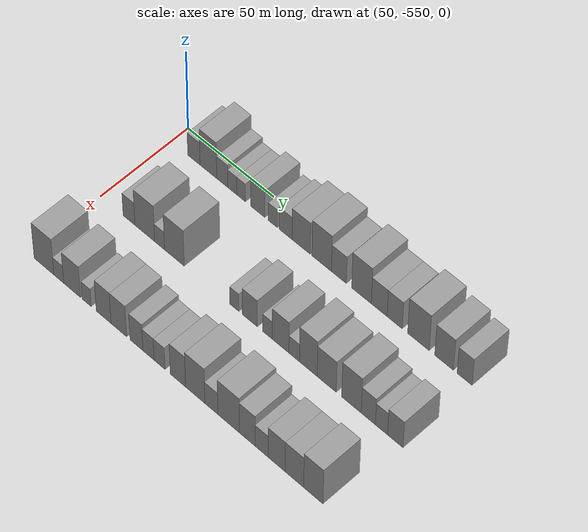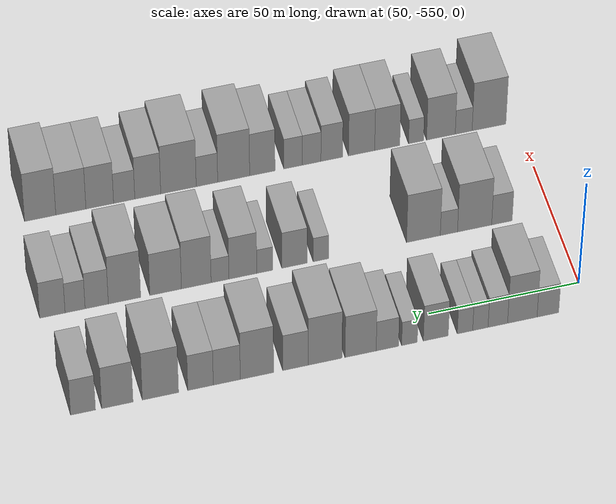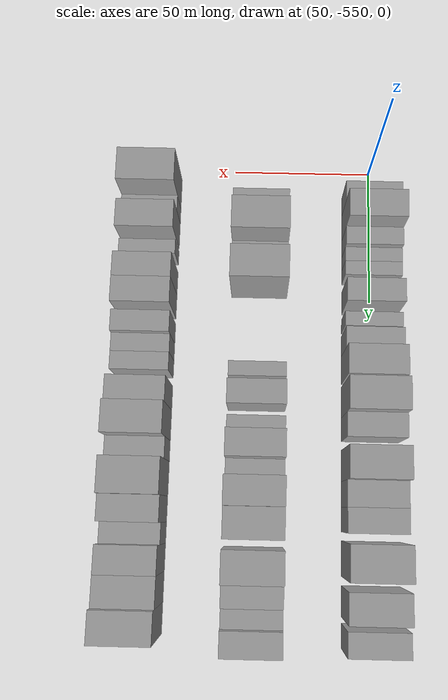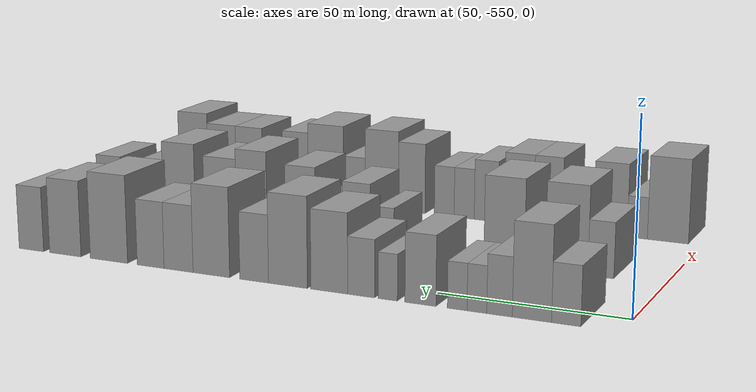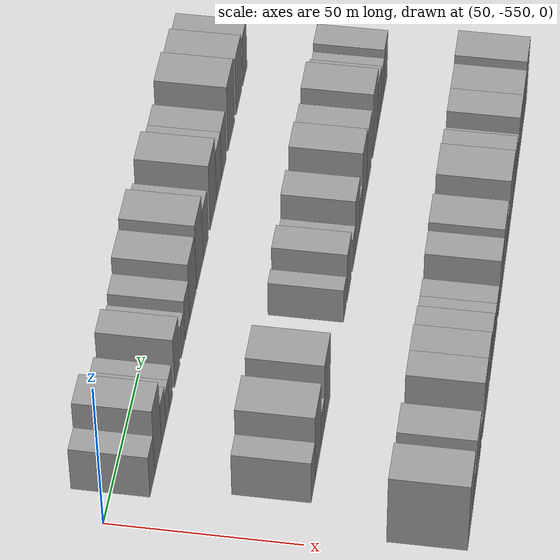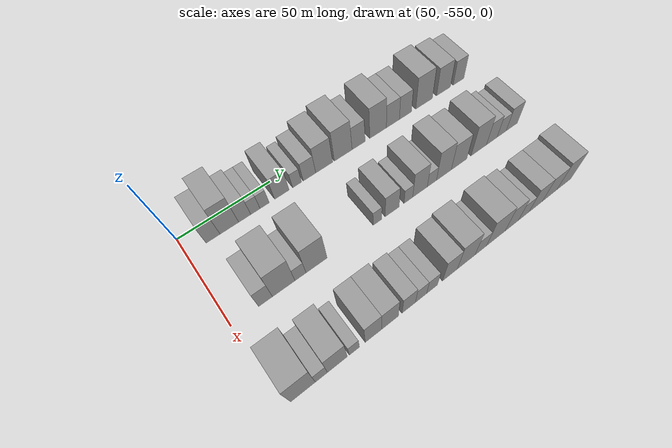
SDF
<sdf version="1.6">
 <world name="default">
  <model name="building_9">
   <static>1</static>
   <pose>50.0000 -536.5706 0 0.000000 0.000000 0.000000</pose>
   <link name="link">
    <pose>0 0 7.50 0 0 0</pose>
    <collision name="collision"><geometry><box><size>20.0000 7.2216 15.0000</size></box></geometry></collision>
    <visual name="visual">
     <cast_shadows>0</cast_shadows>
     <geometry><box><size>20.0000 7.2216 15.0000</size></box></geometry>
     <material>
      <script>
       <uri>model://grey_wall/materials/scripts</uri>
       <uri>model://grey_wall/materials/textures</uri>
       <name>vrc/grey_wall</name>
      </script>
     </material>
    </visual>
   </link>
  </model>
  <model name="building_10">
   <static>1</static>
   <pose>50.0000 -528.0604 0 0.000000 0.000000 0.000000</pose>
   <link name="link">
    <pose>0 0 12.00 0 0 0</pose>
    <collision name="collision"><geometry><box><size>20.0000 9.7987 24.0000</size></box></geometry></collision>
    <visual name="visual">
     <cast_shadows>0</cast_shadows>
     <geometry><box><size>20.0000 9.7987 24.0000</size></box></geometry>
     <material>
      <script>
       <uri>model://grey_wall/materials/scripts</uri>
       <uri>model://grey_wall/materials/textures</uri>
       <name>vrc/grey_wall</name>
      </script>
     </material>
    </visual>
   </link>
  </model>
  <model name="building_11">
   <static>1</static>
   <pose>50.0000 -519.9152 0 0.000000 0.000000 0.000000</pose>
   <link name="link">
    <pose>0 0 7.50 0 0 0</pose>
    <collision name="collision"><geometry><box><size>20.0000 6.4918 15.0000</size></box></geometry></collision>
    <visual name="visual">
     <cast_shadows>0</cast_shadows>
     <geometry><box><size>20.0000 6.4918 15.0000</size></box></geometry>
     <material>
      <script>
       <uri>model://grey_wall/materials/scripts</uri>
       <uri>model://grey_wall/materials/textures</uri>
       <name>vrc/grey_wall</name>
      </script>
     </material>
    </visual>
   </link>
  </model>
  <model name="building_12">
   <static>1</static>
   <pose>50.0000 -514.1275 0 0.000000 0.000000 0.000000</pose>
   <link name="link">
    <pose>0 0 6.00 0 0 0</pose>
    <collision name="collision"><geometry><box><size>20.0000 5.0837 12.0000</size></box></geometry></collision>
    <visual name="visual">
     <cast_shadows>0</cast_shadows>
     <geometry><box><size>20.0000 5.0837 12.0000</size></box></geometry>
     <material>
      <script>
       <uri>model://grey_wall/materials/scripts</uri>
       <uri>model://grey_wall/materials/textures</uri>
       <name>vrc/grey_wall</name>
      </script>
     </material>
    </visual>
   </link>
  </model>
  <model name="building_13">
   <static>1</static>
   <pose>50.0000 -509.0317 0 0.000000 0.000000 0.000000</pose>
   <link name="link">
    <pose>0 0 6.00 0 0 0</pose>
    <collision name="collision"><geometry><box><size>20.0000 5.1077 12.0000</size></box></geometry></collision>
    <visual name="visual">
     <cast_shadows>0</cast_shadows>
     <geometry><box><size>20.0000 5.1077 12.0000</size></box></geometry>
     <material>
      <script>
       <uri>model://grey_wall/materials/scripts</uri>
       <uri>model://grey_wall/materials/textures</uri>
       <name>vrc/grey_wall</name>
      </script>
     </material>
    </visual>
   </link>
  </model>
  <model name="building_14">
   <static>1</static>
   <pose>50.0000 -499.3584 0 0.000000 0.000000 0.000000</pose>
   <link name="link">
    <pose>0 0 9.00 0 0 0</pose>
    <collision name="collision"><geometry><box><size>20.0000 8.2390 18.0000</size></box></geometry></collision>
    <visual name="visual">
     <cast_shadows>0</cast_shadows>
     <geometry><box><size>20.0000 8.2390 18.0000</size></box></geometry>
     <material>
      <script>
       <uri>model://grey_wall/materials/scripts</uri>
       <uri>model://grey_wall/materials/textures</uri>
       <name>vrc/grey_wall</name>
      </script>
     </material>
    </visual>
   </link>
  </model>
  <model name="building_15">
   <static>1</static>
   <pose>50.0000 -490.6600 0 0.000000 0.000000 0.000000</pose>
   <link name="link">
    <pose>0 0 6.00 0 0 0</pose>
    <collision name="collision"><geometry><box><size>20.0000 5.1577 12.0000</size></box></geometry></collision>
    <visual name="visual">
     <cast_shadows>0</cast_shadows>
     <geometry><box><size>20.0000 5.1577 12.0000</size></box></geometry>
     <material>
      <script>
       <uri>model://grey_wall/materials/scripts</uri>
       <uri>model://grey_wall/materials/textures</uri>
       <name>vrc/grey_wall</name>
      </script>
     </material>
    </visual>
   </link>
  </model>
  <model name="building_16">
   <static>1</static>
   <pose>50.0000 -483.3832 0 0.000000 0.000000 0.000000</pose>
   <link name="link">
    <pose>0 0 7.50 0 0 0</pose>
    <collision name="collision"><geometry><box><size>20.0000 7.3959 15.0000</size></box></geometry></collision>
    <visual name="visual">
     <cast_shadows>0</cast_shadows>
     <geometry><box><size>20.0000 7.3959 15.0000</size></box></geometry>
     <material>
      <script>
       <uri>model://grey_wall/materials/scripts</uri>
       <uri>model://grey_wall/materials/textures</uri>
       <name>vrc/grey_wall</name>
      </script>
     </material>
    </visual>
   </link>
  </model>
  <model name="building_17">
   <static>1</static>
   <pose>50.0000 -474.5680 0 0.000000 0.000000 0.000000</pose>
   <link name="link">
    <pose>0 0 10.50 0 0 0</pose>
    <collision name="collision"><geometry><box><size>20.0000 10.2346 21.0000</size></box></geometry></collision>
    <visual name="visual">
     <cast_shadows>0</cast_shadows>
     <geometry><box><size>20.0000 10.2346 21.0000</size></box></geometry>
     <material>
      <script>
       <uri>model://grey_wall/materials/scripts</uri>
       <uri>model://grey_wall/materials/textures</uri>
       <name>vrc/grey_wall</name>
      </script>
     </material>
    </visual>
   </link>
  </model>
  <model name="building_18">
   <static>1</static>
   <pose>50.0000 -462.9156 0 0.000000 0.000000 0.000000</pose>
   <link name="link">
    <pose>0 0 12.00 0 0 0</pose>
    <collision name="collision"><geometry><box><size>20.0000 11.0701 24.0000</size></box></geometry></collision>
    <visual name="visual">
     <cast_shadows>0</cast_shadows>
     <geometry><box><size>20.0000 11.0701 24.0000</size></box></geometry>
     <material>
      <script>
       <uri>model://grey_wall/materials/scripts</uri>
       <uri>model://grey_wall/materials/textures</uri>
       <name>vrc/grey_wall</name>
      </script>
     </material>
    </visual>
   </link>
  </model>
  <model name="building_19">
   <static>1</static>
   <pose>50.0000 -453.2186 0 0.000000 0.000000 0.000000</pose>
   <link name="link">
    <pose>0 0 9.00 0 0 0</pose>
    <collision name="collision"><geometry><box><size>20.0000 8.3239 18.0000</size></box></geometry></collision>
    <visual name="visual">
     <cast_shadows>0</cast_shadows>
     <geometry><box><size>20.0000 8.3239 18.0000</size></box></geometry>
     <material>
      <script>
       <uri>model://grey_wall/materials/scripts</uri>
       <uri>model://grey_wall/materials/textures</uri>
       <name>vrc/grey_wall</name>
      </script>
     </material>
    </visual>
   </link>
  </model>
  <model name="building_20">
   <static>1</static>
   <pose>50.0000 -440.6181 0 0.000000 0.000000 0.000000</pose>
   <link name="link">
    <pose>0 0 12.00 0 0 0</pose>
    <collision name="collision"><geometry><box><size>20.0000 10.8770 24.0000</size></box></geometry></collision>
    <visual name="visual">
     <cast_shadows>0</cast_shadows>
     <geometry><box><size>20.0000 10.8770 24.0000</size></box></geometry>
     <material>
      <script>
       <uri>model://grey_wall/materials/scripts</uri>
       <uri>model://grey_wall/materials/textures</uri>
       <name>vrc/grey_wall</name>
      </script>
     </material>
    </visual>
   </link>
  </model>
  <model name="building_21">
   <static>1</static>
   <pose>50.0000 -430.7888 0 0.000000 0.000000 0.000000</pose>
   <link name="link">
    <pose>0 0 9.00 0 0 0</pose>
    <collision name="collision"><geometry><box><size>20.0000 8.7816 18.0000</size></box></geometry></collision>
    <visual name="visual">
     <cast_shadows>0</cast_shadows>
     <geometry><box><size>20.0000 8.7816 18.0000</size></box></geometry>
     <material>
      <script>
       <uri>model://grey_wall/materials/scripts</uri>
       <uri>model://grey_wall/materials/textures</uri>
       <name>vrc/grey_wall</name>
      </script>
     </material>
    </visual>
   </link>
  </model>
  <model name="building_22">
   <static>1</static>
   <pose>50.0000 -422.2587 0 0.000000 0.000000 0.000000</pose>
   <link name="link">
    <pose>0 0 9.00 0 0 0</pose>
    <collision name="collision"><geometry><box><size>20.0000 8.2787 18.0000</size></box></geometry></collision>
    <visual name="visual">
     <cast_shadows>0</cast_shadows>
     <geometry><box><size>20.0000 8.2787 18.0000</size></box></geometry>
     <material>
      <script>
       <uri>model://grey_wall/materials/scripts</uri>
       <uri>model://grey_wall/materials/textures</uri>
       <name>vrc/grey_wall</name>
      </script>
     </material>
    </visual>
   </link>
  </model>
  <model name="building_23">
   <static>1</static>
   <pose>50.0000 -409.2521 0 0.000000 0.000000 0.000000</pose>
   <link name="link">
    <pose>0 0 12.00 0 0 0</pose>
    <collision name="collision"><geometry><box><size>20.0000 11.7345 24.0000</size></box></geometry></collision>
    <visual name="visual">
     <cast_shadows>0</cast_shadows>
     <geometry><box><size>20.0000 11.7345 24.0000</size></box></geometry>
     <material>
      <script>
       <uri>model://grey_wall/materials/scripts</uri>
       <uri>model://grey_wall/materials/textures</uri>
       <name>vrc/grey_wall</name>
      </script>
     </material>
    </visual>
   </link>
  </model>
  <model name="building_24">
   <static>1</static>
   <pose>50.0000 -395.3235 0 0.000000 0.000000 0.000000</pose>
   <link name="link">
    <pose>0 0 10.50 0 0 0</pose>
    <collision name="collision"><geometry><box><size>20.0000 10.1227 21.0000</size></box></geometry></collision>
    <visual name="visual">
     <cast_shadows>0</cast_shadows>
     <geometry><box><size>20.0000 10.1227 21.0000</size></box></geometry>
     <material>
      <script>
       <uri>model://grey_wall/materials/scripts</uri>
       <uri>model://grey_wall/materials/textures</uri>
       <name>vrc/grey_wall</name>
      </script>
     </material>
    </visual>
   </link>
  </model>
  <model name="building_25">
   <static>1</static>
   <pose>50.0000 -384.2467 0 0.000000 0.000000 0.000000</pose>
   <link name="link">
    <pose>0 0 9.00 0 0 0</pose>
    <collision name="collision"><geometry><box><size>20.0000 8.0308 18.0000</size></box></geometry></collision>
    <visual name="visual">
     <cast_shadows>0</cast_shadows>
     <geometry><box><size>20.0000 8.0308 18.0000</size></box></geometry>
     <material>
      <script>
       <uri>model://grey_wall/materials/scripts</uri>
       <uri>model://grey_wall/materials/textures</uri>
       <name>vrc/grey_wall</name>
      </script>
     </material>
    </visual>
   </link>
  </model>
  <model name="building_141">
   <static>1</static>
   <pose>90.0000 -533.0863 0 0.000000 0.000000 0.000000</pose>
   <link name="link">
    <pose>0 0 7.50 0 0 0</pose>
    <collision name="collision"><geometry><box><size>20.0000 6.9325 15.0000</size></box></geometry></collision>
    <visual name="visual">
     <cast_shadows>0</cast_shadows>
     <geometry><box><size>20.0000 6.9325 15.0000</size></box></geometry>
     <material>
      <script>
       <uri>model://grey_wall/materials/scripts</uri>
       <uri>model://grey_wall/materials/textures</uri>
       <name>vrc/grey_wall</name>
      </script>
     </material>
    </visual>
   </link>
  </model>
  <model name="building_142">
   <static>1</static>
   <pose>90.0000 -523.8484 0 0.000000 0.000000 0.000000</pose>
   <link name="link">
    <pose>0 0 12.00 0 0 0</pose>
    <collision name="collision"><geometry><box><size>20.0000 11.5434 24.0000</size></box></geometry></collision>
    <visual name="visual">
     <cast_shadows>0</cast_shadows>
     <geometry><box><size>20.0000 11.5434 24.0000</size></box></geometry>
     <material>
      <script>
       <uri>model://grey_wall/materials/scripts</uri>
       <uri>model://grey_wall/materials/textures</uri>
       <name>vrc/grey_wall</name>
      </script>
     </material>
    </visual>
   </link>
  </model>
  <model name="building_143">
   <static>1</static>
   <pose>90.0000 -515.1799 0 0.000000 0.000000 0.000000</pose>
   <link name="link">
    <pose>0 0 6.00 0 0 0</pose>
    <collision name="collision"><geometry><box><size>20.0000 5.7935 12.0000</size></box></geometry></collision>
    <visual name="visual">
     <cast_shadows>0</cast_shadows>
     <geometry><box><size>20.0000 5.7935 12.0000</size></box></geometry>
     <material>
      <script>
       <uri>model://grey_wall/materials/scripts</uri>
       <uri>model://grey_wall/materials/textures</uri>
       <name>vrc/grey_wall</name>
      </script>
     </material>
    </visual>
   </link>
  </model>
  <model name="building_144">
   <static>1</static>
   <pose>90.0000 -506.5988 0 0.000000 0.000000 0.000000</pose>
   <link name="link">
    <pose>0 0 12.00 0 0 0</pose>
    <collision name="collision"><geometry><box><size>20.0000 11.3687 24.0000</size></box></geometry></collision>
    <visual name="visual">
     <cast_shadows>0</cast_shadows>
     <geometry><box><size>20.0000 11.3687 24.0000</size></box></geometry>
     <material>
      <script>
       <uri>model://grey_wall/materials/scripts</uri>
       <uri>model://grey_wall/materials/textures</uri>
       <name>vrc/grey_wall</name>
      </script>
     </material>
    </visual>
   </link>
  </model>
  <model name="building_145">
   <static>1</static>
   <pose>90.0000 -472.2191 0 0.000000 0.000000 0.000000</pose>
   <link name="link">
    <pose>0 0 6.00 0 0 0</pose>
    <collision name="collision"><geometry><box><size>20.0000 5.1303 12.0000</size></box></geometry></collision>
    <visual name="visual">
     <cast_shadows>0</cast_shadows>
     <geometry><box><size>20.0000 5.1303 12.0000</size></box></geometry>
     <material>
      <script>
       <uri>model://grey_wall/materials/scripts</uri>
       <uri>model://grey_wall/materials/textures</uri>
       <name>vrc/grey_wall</name>
      </script>
     </material>
    </visual>
   </link>
  </model>
  <model name="building_146">
   <static>1</static>
   <pose>90.0000 -463.4423 0 0.000000 0.000000 0.000000</pose>
   <link name="link">
    <pose>0 0 9.00 0 0 0</pose>
    <collision name="collision"><geometry><box><size>20.0000 8.4232 18.0000</size></box></geometry></collision>
    <visual name="visual">
     <cast_shadows>0</cast_shadows>
     <geometry><box><size>20.0000 8.4232 18.0000</size></box></geometry>
     <material>
      <script>
       <uri>model://grey_wall/materials/scripts</uri>
       <uri>model://grey_wall/materials/textures</uri>
       <name>vrc/grey_wall</name>
      </script>
     </material>
    </visual>
   </link>
  </model>
  <model name="building_147">
   <static>1</static>
   <pose>90.0000 -453.5476 0 0.000000 0.000000 0.000000</pose>
   <link name="link">
    <pose>0 0 6.00 0 0 0</pose>
    <collision name="collision"><geometry><box><size>20.0000 5.3661 12.0000</size></box></geometry></collision>
    <visual name="visual">
     <cast_shadows>0</cast_shadows>
     <geometry><box><size>20.0000 5.3661 12.0000</size></box></geometry>
     <material>
      <script>
       <uri>model://grey_wall/materials/scripts</uri>
       <uri>model://grey_wall/materials/textures</uri>
       <name>vrc/grey_wall</name>
      </script>
     </material>
    </visual>
   </link>
  </model>
  <model name="building_148">
   <static>1</static>
   <pose>90.0000 -446.2421 0 0.000000 0.000000 0.000000</pose>
   <link name="link">
    <pose>0 0 10.50 0 0 0</pose>
    <collision name="collision"><geometry><box><size>20.0000 9.2450 21.0000</size></box></geometry></collision>
    <visual name="visual">
     <cast_shadows>0</cast_shadows>
     <geometry><box><size>20.0000 9.2450 21.0000</size></box></geometry>
     <material>
      <script>
       <uri>model://grey_wall/materials/scripts</uri>
       <uri>model://grey_wall/materials/textures</uri>
       <name>vrc/grey_wall</name>
      </script>
     </material>
    </visual>
   </link>
  </model>
  <model name="building_149">
   <static>1</static>
   <pose>90.0000 -438.6717 0 0.000000 0.000000 0.000000</pose>
   <link name="link">
    <pose>0 0 6.00 0 0 0</pose>
    <collision name="collision"><geometry><box><size>20.0000 5.8957 12.0000</size></box></geometry></collision>
    <visual name="visual">
     <cast_shadows>0</cast_shadows>
     <geometry><box><size>20.0000 5.8957 12.0000</size></box></geometry>
     <material>
      <script>
       <uri>model://grey_wall/materials/scripts</uri>
       <uri>model://grey_wall/materials/textures</uri>
       <name>vrc/grey_wall</name>
      </script>
     </material>
    </visual>
   </link>
  </model>
  <model name="building_150">
   <static>1</static>
   <pose>90.0000 -430.8221 0 0.000000 0.000000 0.000000</pose>
   <link name="link">
    <pose>0 0 12.00 0 0 0</pose>
    <collision name="collision"><geometry><box><size>20.0000 9.8035 24.0000</size></box></geometry></collision>
    <visual name="visual">
     <cast_shadows>0</cast_shadows>
     <geometry><box><size>20.0000 9.8035 24.0000</size></box></geometry>
     <material>
      <script>
       <uri>model://grey_wall/materials/scripts</uri>
       <uri>model://grey_wall/materials/textures</uri>
       <name>vrc/grey_wall</name>
      </script>
     </material>
    </visual>
   </link>
  </model>
  <model name="building_151">
   <static>1</static>
   <pose>90.0000 -420.6980 0 0.000000 0.000000 0.000000</pose>
   <link name="link">
    <pose>0 0 10.50 0 0 0</pose>
    <collision name="collision"><geometry><box><size>20.0000 10.4447 21.0000</size></box></geometry></collision>
    <visual name="visual">
     <cast_shadows>0</cast_shadows>
     <geometry><box><size>20.0000 10.4447 21.0000</size></box></geometry>
     <material>
      <script>
       <uri>model://grey_wall/materials/scripts</uri>
       <uri>model://grey_wall/materials/textures</uri>
       <name>vrc/grey_wall</name>
      </script>
     </material>
    </visual>
   </link>
  </model>
  <model name="building_152">
   <static>1</static>
   <pose>90.0000 -407.1530 0 0.000000 0.000000 0.000000</pose>
   <link name="link">
    <pose>0 0 12.00 0 0 0</pose>
    <collision name="collision"><geometry><box><size>20.0000 10.6453 24.0000</size></box></geometry></collision>
    <visual name="visual">
     <cast_shadows>0</cast_shadows>
     <geometry><box><size>20.0000 10.6453 24.0000</size></box></geometry>
     <material>
      <script>
       <uri>model://grey_wall/materials/scripts</uri>
       <uri>model://grey_wall/materials/textures</uri>
       <name>vrc/grey_wall</name>
      </script>
     </material>
    </visual>
   </link>
  </model>
  <model name="building_153">
   <static>1</static>
   <pose>90.0000 -398.0143 0 0.000000 0.000000 0.000000</pose>
   <link name="link">
    <pose>0 0 9.00 0 0 0</pose>
    <collision name="collision"><geometry><box><size>20.0000 7.6323 18.0000</size></box></geometry></collision>
    <visual name="visual">
     <cast_shadows>0</cast_shadows>
     <geometry><box><size>20.0000 7.6323 18.0000</size></box></geometry>
     <material>
      <script>
       <uri>model://grey_wall/materials/scripts</uri>
       <uri>model://grey_wall/materials/textures</uri>
       <name>vrc/grey_wall</name>
      </script>
     </material>
    </visual>
   </link>
  </model>
  <model name="building_154">
   <static>1</static>
   <pose>90.0000 -390.9142 0 0.000000 0.000000 0.000000</pose>
   <link name="link">
    <pose>0 0 7.50 0 0 0</pose>
    <collision name="collision"><geometry><box><size>20.0000 6.5679 15.0000</size></box></geometry></collision>
    <visual name="visual">
     <cast_shadows>0</cast_shadows>
     <geometry><box><size>20.0000 6.5679 15.0000</size></box></geometry>
     <material>
      <script>
       <uri>model://grey_wall/materials/scripts</uri>
       <uri>model://grey_wall/materials/textures</uri>
       <name>vrc/grey_wall</name>
      </script>
     </material>
    </visual>
   </link>
  </model>
  <model name="building_155">
   <static>1</static>
   <pose>90.0000 -383.4702 0 0.000000 0.000000 0.000000</pose>
   <link name="link">
    <pose>0 0 9.00 0 0 0</pose>
    <collision name="collision"><geometry><box><size>20.0000 8.3200 18.0000</size></box></geometry></collision>
    <visual name="visual">
     <cast_shadows>0</cast_shadows>
     <geometry><box><size>20.0000 8.3200 18.0000</size></box></geometry>
     <material>
      <script>
       <uri>model://grey_wall/materials/scripts</uri>
       <uri>model://grey_wall/materials/textures</uri>
       <name>vrc/grey_wall</name>
      </script>
     </material>
    </visual>
   </link>
  </model>
  <model name="building_278">
   <static>1</static>
   <pose>130.0000 -540.4434 0 0.000000 0.000000 0.000000</pose>
   <link name="link">
    <pose>0 0 12.00 0 0 0</pose>
    <collision name="collision"><geometry><box><size>20.0000 11.6261 24.0000</size></box></geometry></collision>
    <visual name="visual">
     <cast_shadows>0</cast_shadows>
     <geometry><box><size>20.0000 11.6261 24.0000</size></box></geometry>
     <material>
      <script>
       <uri>model://grey_wall/materials/scripts</uri>
       <uri>model://grey_wall/materials/textures</uri>
       <name>vrc/grey_wall</name>
      </script>
     </material>
    </visual>
   </link>
  </model>
  <model name="building_279">
   <static>1</static>
   <pose>130.0000 -531.7332 0 0.000000 0.000000 0.000000</pose>
   <link name="link">
    <pose>0 0 6.00 0 0 0</pose>
    <collision name="collision"><geometry><box><size>20.0000 5.7943 12.0000</size></box></geometry></collision>
    <visual name="visual">
     <cast_shadows>0</cast_shadows>
     <geometry><box><size>20.0000 5.7943 12.0000</size></box></geometry>
     <material>
      <script>
       <uri>model://grey_wall/materials/scripts</uri>
       <uri>model://grey_wall/materials/textures</uri>
       <name>vrc/grey_wall</name>
      </script>
     </material>
    </visual>
   </link>
  </model>
  <model name="building_280">
   <static>1</static>
   <pose>130.0000 -523.9139 0 0.000000 0.000000 0.000000</pose>
   <link name="link">
    <pose>0 0 10.50 0 0 0</pose>
    <collision name="collision"><geometry><box><size>20.0000 9.8442 21.0000</size></box></geometry></collision>
    <visual name="visual">
     <cast_shadows>0</cast_shadows>
     <geometry><box><size>20.0000 9.8442 21.0000</size></box></geometry>
     <material>
      <script>
       <uri>model://grey_wall/materials/scripts</uri>
       <uri>model://grey_wall/materials/textures</uri>
       <name>vrc/grey_wall</name>
      </script>
     </material>
    </visual>
   </link>
  </model>
  <model name="building_281">
   <static>1</static>
   <pose>130.0000 -515.4103 0 0.000000 0.000000 0.000000</pose>
   <link name="link">
    <pose>0 0 6.00 0 0 0</pose>
    <collision name="collision"><geometry><box><size>20.0000 5.1631 12.0000</size></box></geometry></collision>
    <visual name="visual">
     <cast_shadows>0</cast_shadows>
     <geometry><box><size>20.0000 5.1631 12.0000</size></box></geometry>
     <material>
      <script>
       <uri>model://grey_wall/materials/scripts</uri>
       <uri>model://grey_wall/materials/textures</uri>
       <name>vrc/grey_wall</name>
      </script>
     </material>
    </visual>
   </link>
  </model>
  <model name="building_282">
   <static>1</static>
   <pose>130.0000 -505.5357 0 0.000000 0.000000 0.000000</pose>
   <link name="link">
    <pose>0 0 10.50 0 0 0</pose>
    <collision name="collision"><geometry><box><size>20.0000 8.5862 21.0000</size></box></geometry></collision>
    <visual name="visual">
     <cast_shadows>0</cast_shadows>
     <geometry><box><size>20.0000 8.5862 21.0000</size></box></geometry>
     <material>
      <script>
       <uri>model://grey_wall/materials/scripts</uri>
       <uri>model://grey_wall/materials/textures</uri>
       <name>vrc/grey_wall</name>
      </script>
     </material>
    </visual>
   </link>
  </model>
  <model name="building_283">
   <static>1</static>
   <pose>130.0000 -496.7783 0 0.000000 0.000000 0.000000</pose>
   <link name="link">
    <pose>0 0 10.50 0 0 0</pose>
    <collision name="collision"><geometry><box><size>20.0000 8.9286 21.0000</size></box></geometry></collision>
    <visual name="visual">
     <cast_shadows>0</cast_shadows>
     <geometry><box><size>20.0000 8.9286 21.0000</size></box></geometry>
     <material>
      <script>
       <uri>model://grey_wall/materials/scripts</uri>
       <uri>model://grey_wall/materials/textures</uri>
       <name>vrc/grey_wall</name>
      </script>
     </material>
    </visual>
   </link>
  </model>
  <model name="building_284">
   <static>1</static>
   <pose>130.0000 -486.6291 0 0.000000 0.000000 0.000000</pose>
   <link name="link">
    <pose>0 0 9.00 0 0 0</pose>
    <collision name="collision"><geometry><box><size>20.0000 7.3698 18.0000</size></box></geometry></collision>
    <visual name="visual">
     <cast_shadows>0</cast_shadows>
     <geometry><box><size>20.0000 7.3698 18.0000</size></box></geometry>
     <material>
      <script>
       <uri>model://grey_wall/materials/scripts</uri>
       <uri>model://grey_wall/materials/textures</uri>
       <name>vrc/grey_wall</name>
      </script>
     </material>
    </visual>
   </link>
  </model>
  <model name="building_285">
   <static>1</static>
   <pose>130.0000 -479.7828 0 0.000000 0.000000 0.000000</pose>
   <link name="link">
    <pose>0 0 7.50 0 0 0</pose>
    <collision name="collision"><geometry><box><size>20.0000 6.3229 15.0000</size></box></geometry></collision>
    <visual name="visual">
     <cast_shadows>0</cast_shadows>
     <geometry><box><size>20.0000 6.3229 15.0000</size></box></geometry>
     <material>
      <script>
       <uri>model://grey_wall/materials/scripts</uri>
       <uri>model://grey_wall/materials/textures</uri>
       <name>vrc/grey_wall</name>
      </script>
     </material>
    </visual>
   </link>
  </model>
  <model name="building_286">
   <static>1</static>
   <pose>130.0000 -473.4945 0 0.000000 0.000000 0.000000</pose>
   <link name="link">
    <pose>0 0 7.50 0 0 0</pose>
    <collision name="collision"><geometry><box><size>20.0000 6.2537 15.0000</size></box></geometry></collision>
    <visual name="visual">
     <cast_shadows>0</cast_shadows>
     <geometry><box><size>20.0000 6.2537 15.0000</size></box></geometry>
     <material>
      <script>
       <uri>model://grey_wall/materials/scripts</uri>
       <uri>model://grey_wall/materials/textures</uri>
       <name>vrc/grey_wall</name>
      </script>
     </material>
    </visual>
   </link>
  </model>
  <model name="building_287">
   <static>1</static>
   <pose>130.0000 -463.0679 0 0.000000 0.000000 0.000000</pose>
   <link name="link">
    <pose>0 0 10.50 0 0 0</pose>
    <collision name="collision"><geometry><box><size>20.0000 8.5994 21.0000</size></box></geometry></collision>
    <visual name="visual">
     <cast_shadows>0</cast_shadows>
     <geometry><box><size>20.0000 8.5994 21.0000</size></box></geometry>
     <material>
      <script>
       <uri>model://grey_wall/materials/scripts</uri>
       <uri>model://grey_wall/materials/textures</uri>
       <name>vrc/grey_wall</name>
      </script>
     </material>
    </visual>
   </link>
  </model>
  <model name="building_288">
   <static>1</static>
   <pose>130.0000 -453.3747 0 0.000000 0.000000 0.000000</pose>
   <link name="link">
    <pose>0 0 12.00 0 0 0</pose>
    <collision name="collision"><geometry><box><size>20.0000 10.7871 24.0000</size></box></geometry></collision>
    <visual name="visual">
     <cast_shadows>0</cast_shadows>
     <geometry><box><size>20.0000 10.7871 24.0000</size></box></geometry>
     <material>
      <script>
       <uri>model://grey_wall/materials/scripts</uri>
       <uri>model://grey_wall/materials/textures</uri>
       <name>vrc/grey_wall</name>
      </script>
     </material>
    </visual>
   </link>
  </model>
  <model name="building_289">
   <static>1</static>
   <pose>130.0000 -444.3567 0 0.000000 0.000000 0.000000</pose>
   <link name="link">
    <pose>0 0 7.50 0 0 0</pose>
    <collision name="collision"><geometry><box><size>20.0000 7.2487 15.0000</size></box></geometry></collision>
    <visual name="visual">
     <cast_shadows>0</cast_shadows>
     <geometry><box><size>20.0000 7.2487 15.0000</size></box></geometry>
     <material>
      <script>
       <uri>model://grey_wall/materials/scripts</uri>
       <uri>model://grey_wall/materials/textures</uri>
       <name>vrc/grey_wall</name>
      </script>
     </material>
    </visual>
   </link>
  </model>
  <model name="building_290">
   <static>1</static>
   <pose>130.0000 -434.7741 0 0.000000 0.000000 0.000000</pose>
   <link name="link">
    <pose>0 0 12.00 0 0 0</pose>
    <collision name="collision"><geometry><box><size>20.0000 11.9165 24.0000</size></box></geometry></collision>
    <visual name="visual">
     <cast_shadows>0</cast_shadows>
     <geometry><box><size>20.0000 11.9165 24.0000</size></box></geometry>
     <material>
      <script>
       <uri>model://grey_wall/materials/scripts</uri>
       <uri>model://grey_wall/materials/textures</uri>
       <name>vrc/grey_wall</name>
      </script>
     </material>
    </visual>
   </link>
  </model>
  <model name="building_291">
   <static>1</static>
   <pose>130.0000 -424.4605 0 0.000000 0.000000 0.000000</pose>
   <link name="link">
    <pose>0 0 10.50 0 0 0</pose>
    <collision name="collision"><geometry><box><size>20.0000 8.7107 21.0000</size></box></geometry></collision>
    <visual name="visual">
     <cast_shadows>0</cast_shadows>
     <geometry><box><size>20.0000 8.7107 21.0000</size></box></geometry>
     <material>
      <script>
       <uri>model://grey_wall/materials/scripts</uri>
       <uri>model://grey_wall/materials/textures</uri>
       <name>vrc/grey_wall</name>
      </script>
     </material>
    </visual>
   </link>
  </model>
  <model name="building_292">
   <static>1</static>
   <pose>130.0000 -416.5527 0 0.000000 0.000000 0.000000</pose>
   <link name="link">
    <pose>0 0 7.50 0 0 0</pose>
    <collision name="collision"><geometry><box><size>20.0000 7.1049 15.0000</size></box></geometry></collision>
    <visual name="visual">
     <cast_shadows>0</cast_shadows>
     <geometry><box><size>20.0000 7.1049 15.0000</size></box></geometry>
     <material>
      <script>
       <uri>model://grey_wall/materials/scripts</uri>
       <uri>model://grey_wall/materials/textures</uri>
       <name>vrc/grey_wall</name>
      </script>
     </material>
    </visual>
   </link>
  </model>
  <model name="building_293">
   <static>1</static>
   <pose>130.0000 -408.3748 0 0.000000 0.000000 0.000000</pose>
   <link name="link">
    <pose>0 0 10.50 0 0 0</pose>
    <collision name="collision"><geometry><box><size>20.0000 9.2510 21.0000</size></box></geometry></collision>
    <visual name="visual">
     <cast_shadows>0</cast_shadows>
     <geometry><box><size>20.0000 9.2510 21.0000</size></box></geometry>
     <material>
      <script>
       <uri>model://grey_wall/materials/scripts</uri>
       <uri>model://grey_wall/materials/textures</uri>
       <name>vrc/grey_wall</name>
      </script>
     </material>
    </visual>
   </link>
  </model>
  <model name="building_294">
   <static>1</static>
   <pose>130.0000 -398.7276 0 0.000000 0.000000 0.000000</pose>
   <link name="link">
    <pose>0 0 10.50 0 0 0</pose>
    <collision name="collision"><geometry><box><size>20.0000 10.0433 21.0000</size></box></geometry></collision>
    <visual name="visual">
     <cast_shadows>0</cast_shadows>
     <geometry><box><size>20.0000 10.0433 21.0000</size></box></geometry>
     <material>
      <script>
       <uri>model://grey_wall/materials/scripts</uri>
       <uri>model://grey_wall/materials/textures</uri>
       <name>vrc/grey_wall</name>
      </script>
     </material>
    </visual>
   </link>
  </model>
  <model name="building_295">
   <static>1</static>
   <pose>130.0000 -388.5037 0 0.000000 0.000000 0.000000</pose>
   <link name="link">
    <pose>0 0 12.00 0 0 0</pose>
    <collision name="collision"><geometry><box><size>20.0000 10.4047 24.0000</size></box></geometry></collision>
    <visual name="visual">
     <cast_shadows>0</cast_shadows>
     <geometry><box><size>20.0000 10.4047 24.0000</size></box></geometry>
     <material>
      <script>
       <uri>model://grey_wall/materials/scripts</uri>
       <uri>model://grey_wall/materials/textures</uri>
       <name>vrc/grey_wall</name>
      </script>
     </material>
    </visual>
   </link>
  </model>
 </world>
</sdf>
